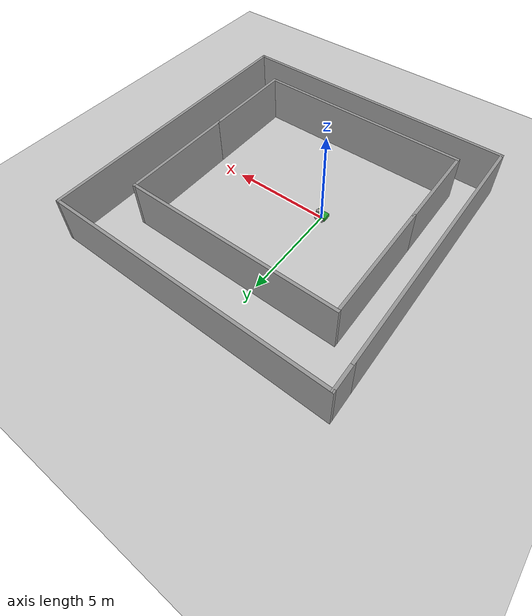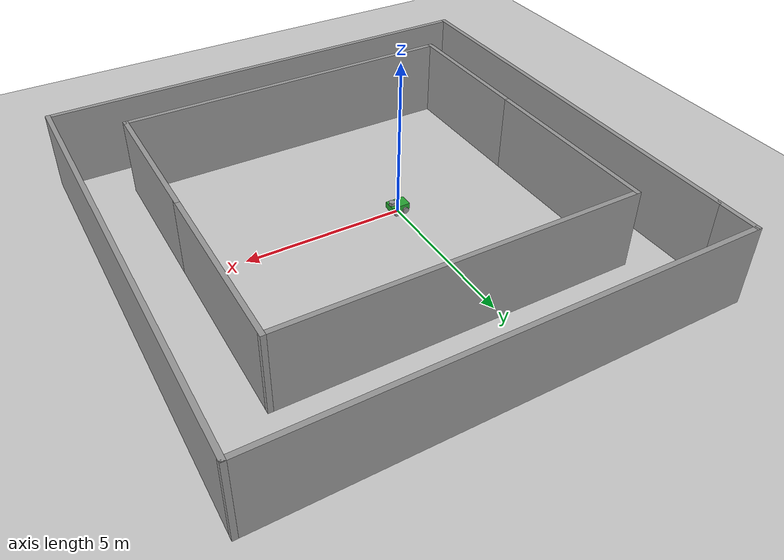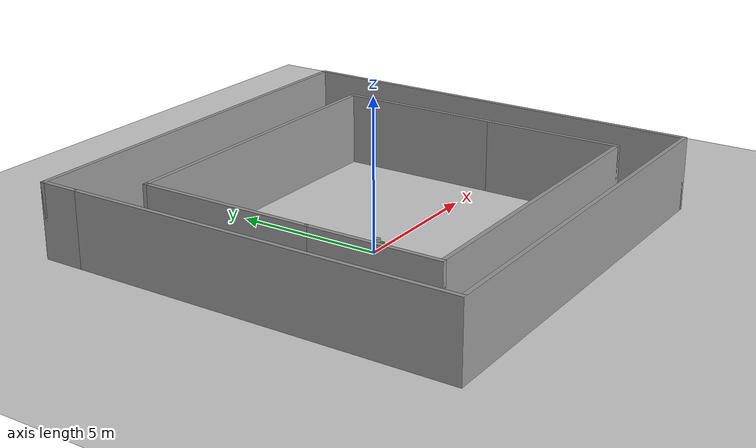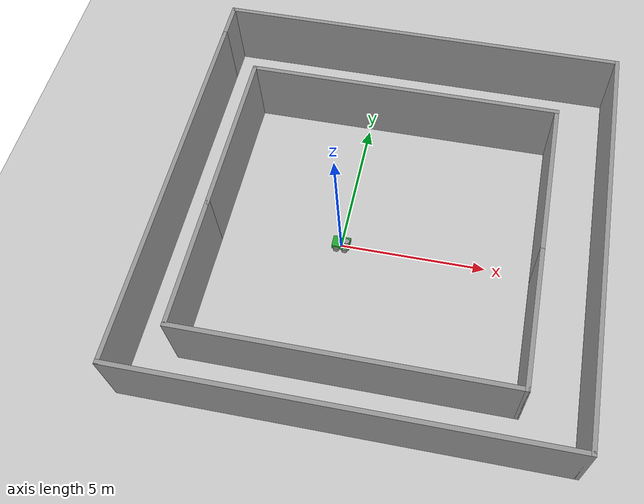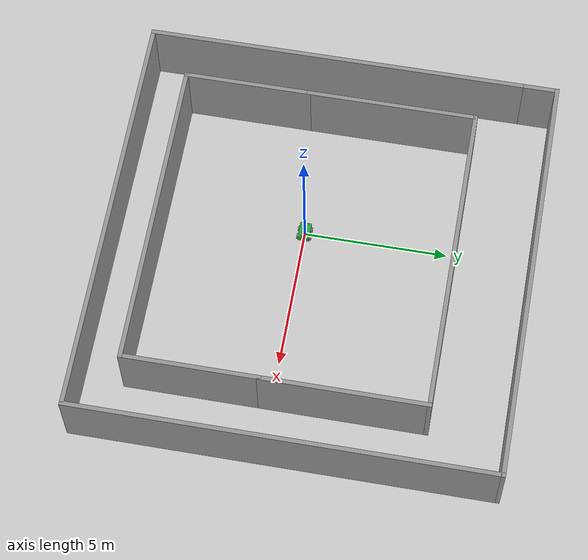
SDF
<sdf version="1.7">
 <world name="default">
  <light name="sun" type="directional">
   <pose>0 0 10 0 -0 0</pose>
   <diffuse>0.8 0.8 0.8 1</diffuse>
   <specular>0.2 0.2 0.2 1</specular>
   <attenuation>
    <range>1000</range>
    <constant>0.9</constant>
    <linear>0.01</linear>
    <quadratic>0.001</quadratic>
   </attenuation>
   <direction>-0.5 0.1 -0.9</direction>
   <spot><inner_angle>0</inner_angle><outer_angle>0</outer_angle><falloff>0</falloff></spot>
  </light>
  <model name="ground_plane">
   <static>1</static>
   <link name="link">
    <collision name="collision">
     <geometry><plane><normal>0 0 1</normal><size>100 100</size></plane></geometry>
     <surface>
      <contact><collide_bitmask>65535</collide_bitmask></contact>
      <friction><ode><mu>100</mu><mu2>50</mu2></ode></friction>
     </surface>
    </collision>
    <visual name="visual">
     <cast_shadows>0</cast_shadows>
     <geometry><plane><normal>0 0 1</normal><size>100 100</size></plane></geometry>
     <material>
      <script><uri>file://media/materials/scripts/gazebo.material</uri><name>Gazebo/Grey</name></script>
     </material>
    </visual>
   </link>
  </model>
  <gravity>0 0 -9.8</gravity>
  <magnetic_field>6e-06 2.3e-05 -4.2e-05</magnetic_field>
  <atmosphere type="adiabatic"/>
  <physics type="ode">
   <max_step_size>0.001</max_step_size>
   <real_time_factor>1</real_time_factor>
   <real_time_update_rate>1000</real_time_update_rate>
  </physics>
  <scene><ambient>0.4 0.4 0.4 1</ambient><background>0.7 0.7 0.7 1</background><shadows>1</shadows></scene>
  <audio><device>default</device></audio>
  <spherical_coordinates>
   <surface_model>EARTH_WGS84</surface_model>
   <latitude_deg>0</latitude_deg>
   <longitude_deg>0</longitude_deg>
   <elevation>0</elevation>
   <heading_deg>0</heading_deg>
  </spherical_coordinates>
  <model name="my_robot">
   <link name="base_footprint">
    <inertial>
     <pose>0.018182 0 0.213636 0 -0 0</pose>
     <mass>2.2</mass>
     <inertia>
      <ixx>0.272924</ixx>
      <ixy>0</ixy>
      <ixz>-0.00545455</ixz>
      <iyy>0.36203</iyy>
      <iyz>-1.45993e-06</iyz>
      <izz>0.142773</izz>
     </inertia>
    </inertial>
    <collision name="base_footprint_fixed_joint_lump__base_link_collision">
     <pose>0 0 0.2 0 -0 0</pose>
     <geometry><box><size>0.6 0.4 0.2</size></box></geometry>
    </collision>
    <collision name="base_footprint_fixed_joint_lump__laser_frame_collision_1">
     <pose>0.2 0 0.35 1.57 -0 0</pose>
     <geometry><cylinder><length>0.1</length><radius>0.1</radius></cylinder></geometry>
    </collision>
    <visual name="base_footprint_fixed_joint_lump__base_link_visual">
     <pose>0 0 0.2 0 -0 0</pose>
     <geometry><box><size>0.6 0.4 0.2</size></box></geometry>
     <material>
      <script><name>Gazebo/Green</name><uri>file://media/materials/scripts/gazebo.material</uri></script>
     </material>
    </visual>
    <visual name="base_footprint_fixed_joint_lump__laser_frame_visual_1">
     <pose>0.2 0 0.35 0 -0 0</pose>
     <geometry><cylinder><length>0.1</length><radius>0.1</radius></cylinder></geometry>
     <material>
      <script><name>Gazebo/Grey</name><uri>file://media/materials/scripts/gazebo.material</uri></script>
     </material>
    </visual>
    <sensor name="laser" type="ray">
     <visualize>1</visualize>
     <update_rate>10</update_rate>
     <ray>
      <scan>
       <horizontal>
        <samples>360</samples>
        <min_angle>-3.14</min_angle>
        <max_angle>3.14</max_angle>
        <resolution>1</resolution>
       </horizontal>
       <vertical><samples>1</samples><min_angle>0</min_angle><max_angle>0</max_angle></vertical>
      </scan>
      <range><min>0.3</min><max>12</max></range>
     </ray>
     <plugin name="laser_controller" filename="libgazebo_ros_ray_sensor.so">
      <ros><argument>~/out:=scan</argument></ros>
      <output_type>sensor_msgs/LaserScan</output_type>
      <frame_name>laser_frame</frame_name>
     </plugin>
     <pose>0.2 0 0.35 0 -0 0</pose>
    </sensor>
   </link>
   <joint name="base_left_back_wheel" type="revolute">
    <pose relative_to="base_footprint">-0.15 0.225 0.1 0 -0 0</pose>
    <parent>base_footprint</parent>
    <child>left_back wheel</child>
    <axis>
     <xyz>0 1 0</xyz>
     <limit><lower>-1e+16</lower><upper>1e+16</upper></limit>
     <dynamics><spring_reference>0</spring_reference><spring_stiffness>0</spring_stiffness></dynamics>
    </axis>
   </joint>
   <link name="left_back wheel">
    <pose relative_to="base_left_back_wheel">0 0 0 0 -0 0</pose>
    <inertial>
     <pose>0 0 0 1.57 -0 0</pose>
     <mass>0.2</mass>
     <inertia>
      <ixx>0.00216667</ixx>
      <ixy>0</ixy>
      <ixz>0</ixz>
      <iyy>0.00216667</iyy>
      <iyz>0</iyz>
      <izz>0.004</izz>
     </inertia>
    </inertial>
    <collision name="left_back wheel_collision">
     <pose>0 0 0 1.57 -0 0</pose>
     <geometry><cylinder><length>0.05</length><radius>0.1</radius></cylinder></geometry>
    </collision>
    <visual name="left_back wheel_visual">
     <pose>0 0 0 1.57 -0 0</pose>
     <geometry><cylinder><length>0.05</length><radius>0.1</radius></cylinder></geometry>
     <material>
      <script><name>Gazebo/Grey</name><uri>file://media/materials/scripts/gazebo.material</uri></script>
     </material>
    </visual>
   </link>
   <joint name="base_left_front_wheel" type="revolute">
    <pose relative_to="base_footprint">0.15 0.225 0.1 0 -0 0</pose>
    <parent>base_footprint</parent>
    <child>left_front wheel</child>
    <axis>
     <xyz>0 1 0</xyz>
     <limit><lower>-1e+16</lower><upper>1e+16</upper></limit>
     <dynamics><spring_reference>0</spring_reference><spring_stiffness>0</spring_stiffness></dynamics>
    </axis>
   </joint>
   <link name="left_front wheel">
    <pose relative_to="base_left_front_wheel">0 0 0 0 -0 0</pose>
    <inertial>
     <pose>0 0 0 1.57 -0 0</pose>
     <mass>0.2</mass>
     <inertia>
      <ixx>0.00216667</ixx>
      <ixy>0</ixy>
      <ixz>0</ixz>
      <iyy>0.00216667</iyy>
      <iyz>0</iyz>
      <izz>0.004</izz>
     </inertia>
    </inertial>
    <collision name="left_front wheel_collision">
     <pose>0 0 0 1.57 -0 0</pose>
     <geometry><cylinder><length>0.05</length><radius>0.1</radius></cylinder></geometry>
    </collision>
    <visual name="left_front wheel_visual">
     <pose>0 0 0 1.57 -0 0</pose>
     <geometry><cylinder><length>0.05</length><radius>0.1</radius></cylinder></geometry>
     <material>
      <script><name>Gazebo/Grey</name><uri>file://media/materials/scripts/gazebo.material</uri></script>
     </material>
    </visual>
   </link>
   <joint name="base_right_back_wheel" type="revolute">
    <pose relative_to="base_footprint">-0.15 -0.225 0.1 0 -0 0</pose>
    <parent>base_footprint</parent>
    <child>right_back wheel</child>
    <axis>
     <xyz>0 1 0</xyz>
     <limit><lower>-1e+16</lower><upper>1e+16</upper></limit>
     <dynamics><spring_reference>0</spring_reference><spring_stiffness>0</spring_stiffness></dynamics>
    </axis>
   </joint>
   <link name="right_back wheel">
    <pose relative_to="base_right_back_wheel">0 0 0 0 -0 0</pose>
    <inertial>
     <pose>0 0 0 1.57 -0 0</pose>
     <mass>0.2</mass>
     <inertia>
      <ixx>0.00216667</ixx>
      <ixy>0</ixy>
      <ixz>0</ixz>
      <iyy>0.00216667</iyy>
      <iyz>0</iyz>
      <izz>0.004</izz>
     </inertia>
    </inertial>
    <collision name="right_back wheel_collision">
     <pose>0 0 0 1.57 -0 0</pose>
     <geometry><cylinder><length>0.05</length><radius>0.1</radius></cylinder></geometry>
    </collision>
    <visual name="right_back wheel_visual">
     <pose>0 0 0 1.57 -0 0</pose>
     <geometry><cylinder><length>0.05</length><radius>0.1</radius></cylinder></geometry>
     <material>
      <script><name>Gazebo/Grey</name><uri>file://media/materials/scripts/gazebo.material</uri></script>
     </material>
    </visual>
   </link>
   <joint name="base_right_front_wheel" type="revolute">
    <pose relative_to="base_footprint">0.15 -0.225 0.1 0 -0 0</pose>
    <parent>base_footprint</parent>
    <child>right_front wheel</child>
    <axis>
     <xyz>0 1 0</xyz>
     <limit><lower>-1e+16</lower><upper>1e+16</upper></limit>
     <dynamics><spring_reference>0</spring_reference><spring_stiffness>0</spring_stiffness></dynamics>
    </axis>
   </joint>
   <link name="right_front wheel">
    <pose relative_to="base_right_front_wheel">0 0 0 0 -0 0</pose>
    <inertial>
     <pose>0 0 0 1.57 -0 0</pose>
     <mass>0.2</mass>
     <inertia>
      <ixx>0.00216667</ixx>
      <ixy>0</ixy>
      <ixz>0</ixz>
      <iyy>0.00216667</iyy>
      <iyz>0</iyz>
      <izz>0.004</izz>
     </inertia>
    </inertial>
    <collision name="right_front wheel_collision">
     <pose>0 0 0 1.57 -0 0</pose>
     <geometry><cylinder><length>0.05</length><radius>0.1</radius></cylinder></geometry>
    </collision>
    <visual name="right_front wheel_visual">
     <pose>0 0 0 1.57 -0 0</pose>
     <geometry><cylinder><length>0.05</length><radius>0.1</radius></cylinder></geometry>
     <material>
      <script><name>Gazebo/Grey</name><uri>file://media/materials/scripts/gazebo.material</uri></script>
     </material>
    </visual>
   </link>
   <static>0</static>
   <plugin name="gazebo_ros_diff_drive" filename="libgazebo_ros_diff_drive.so">
    <update_rate>50</update_rate>
    <num_wheel_pairs>2</num_wheel_pairs>
    <left_joint>base_left_back_wheel</left_joint>
    <right_joint>base_right_back_wheel</right_joint>
    <left_joint>base_left_front_wheel</left_joint>
    <right_joint>base_right_front_wheel</right_joint>
    <wheel_separation>0.45</wheel_separation>
    <wheel_diameter>0.2</wheel_diameter>
    <command_topic>cmd_vel</command_topic>
    <publish_odom>1</publish_odom>
    <publish_odom_tf>1</publish_odom_tf>
    <publish_wheel_tf>1</publish_wheel_tf>
    <odometry_topic>odom</odometry_topic>
    <odometry_frame>odom</odometry_frame>
    <robot_base_frame>base_footprint</robot_base_frame>
   </plugin>
   <pose>0.000107 -0.001554 1.1e-05 0 0 -0.000786</pose>
  </model>
  <model name="test">
   <pose>1.405 0.745 0 0 -0 0</pose>
   <link name="Wall_10">
    <collision name="Wall_10_Collision">
     <geometry><box><size>4.75 0.15 2.5</size></box></geometry>
     <pose>0 0 1.25 0 -0 0</pose>
    </collision>
    <visual name="Wall_10_Visual">
     <pose>0 0 1.25 0 -0 0</pose>
     <geometry><box><size>4.75 0.15 2.5</size></box></geometry>
     <material>
      <script><uri>file://media/materials/scripts/gazebo.material</uri><name>Gazebo/Grey</name></script>
      <ambient>1 1 1 1</ambient>
     </material>
     <meta><layer>0</layer></meta>
    </visual>
    <pose>5.215 -3.375 0 0 -0 1.5708</pose>
   </link>
   <link name="Wall_11">
    <collision name="Wall_11_Collision">
     <geometry><box><size>5.75 0.15 2.5</size></box></geometry>
     <pose>0 0 1.25 0 -0 0</pose>
    </collision>
    <visual name="Wall_11_Visual">
     <pose>0 0 1.25 0 -0 0</pose>
     <geometry><box><size>5.75 0.15 2.5</size></box></geometry>
     <material>
      <script><uri>file://media/materials/scripts/gazebo.material</uri><name>Gazebo/Grey</name></script>
      <ambient>1 1 1 1</ambient>
     </material>
     <meta><layer>0</layer></meta>
    </visual>
    <pose>5.215 1.725 0 0 -0 1.5708</pose>
   </link>
   <link name="Wall_12">
    <collision name="Wall_12_Collision">
     <geometry><box><size>11 0.15 2.5</size></box></geometry>
     <pose>0 0 1.25 0 -0 0</pose>
    </collision>
    <visual name="Wall_12_Visual">
     <pose>0 0 1.25 0 -0 0</pose>
     <geometry><box><size>11 0.15 2.5</size></box></geometry>
     <material>
      <script><uri>file://media/materials/scripts/gazebo.material</uri><name>Gazebo/Grey</name></script>
      <ambient>1 1 1 1</ambient>
     </material>
     <meta><layer>0</layer></meta>
    </visual>
    <pose>-0.21 4.525 0 0 -0 3.14159</pose>
   </link>
   <link name="Wall_13">
    <collision name="Wall_13_Collision">
     <geometry><box><size>6 0.15 2.5</size></box></geometry>
     <pose>0 0 1.25 0 -0 0</pose>
    </collision>
    <visual name="Wall_13_Visual">
     <pose>0 0 1.25 0 -0 0</pose>
     <geometry><box><size>6 0.15 2.5</size></box></geometry>
     <material>
      <script><uri>file://media/materials/scripts/gazebo.material</uri><name>Gazebo/Grey</name></script>
      <ambient>1 1 1 1</ambient>
     </material>
     <meta><layer>0</layer></meta>
    </visual>
    <pose>-5.635 1.6 0 0 -0 -1.5708</pose>
   </link>
   <link name="Wall_15">
    <collision name="Wall_15_Collision">
     <geometry><box><size>13.25 0.15 2.5</size></box></geometry>
     <pose>0 0 1.25 0 -0 0</pose>
    </collision>
    <visual name="Wall_15_Visual">
     <pose>0 0 1.25 0 -0 0</pose>
     <geometry><box><size>13.25 0.15 2.5</size></box></geometry>
     <material>
      <script><uri>file://media/materials/scripts/gazebo.material</uri><name>Gazebo/Grey</name></script>
      <ambient>1 1 1 1</ambient>
     </material>
     <meta><layer>0</layer></meta>
    </visual>
    <pose>-7.175 -0.625 0 0 -0 -1.5708</pose>
   </link>
   <link name="Wall_16">
    <collision name="Wall_16_Collision">
     <geometry><box><size>14.5 0.15 2.5</size></box></geometry>
     <pose>0 0 1.25 0 -0 0</pose>
    </collision>
    <visual name="Wall_16_Visual">
     <pose>0 0 1.25 0 -0 0</pose>
     <geometry><box><size>14.5 0.15 2.5</size></box></geometry>
     <material>
      <script><uri>file://media/materials/scripts/gazebo.material</uri><name>Gazebo/Grey</name></script>
      <ambient>1 1 1 1</ambient>
     </material>
     <meta><layer>0</layer></meta>
    </visual>
    <pose>0 -7.175 0 0 -0 0</pose>
   </link>
   <link name="Wall_17">
    <collision name="Wall_17_Collision">
     <geometry><box><size>14.5 0.15 2.5</size></box></geometry>
     <pose>0 0 1.25 0 -0 0</pose>
    </collision>
    <visual name="Wall_17_Visual">
     <pose>0 0 1.25 0 -0 0</pose>
     <geometry><box><size>14.5 0.15 2.5</size></box></geometry>
     <material>
      <script><uri>file://media/materials/scripts/gazebo.material</uri><name>Gazebo/Grey</name></script>
      <ambient>1 1 1 1</ambient>
     </material>
     <meta><layer>0</layer></meta>
    </visual>
    <pose>7.175 0 0 0 -0 1.5708</pose>
   </link>
   <link name="Wall_18">
    <collision name="Wall_18_Collision">
     <geometry><box><size>14.5 0.15 2.5</size></box></geometry>
     <pose>0 0 1.25 0 -0 0</pose>
    </collision>
    <visual name="Wall_18_Visual">
     <pose>0 0 1.25 0 -0 0</pose>
     <geometry><box><size>14.5 0.15 2.5</size></box></geometry>
     <material>
      <script><uri>file://media/materials/scripts/gazebo.material</uri><name>Gazebo/Grey</name></script>
      <ambient>1 1 1 1</ambient>
     </material>
     <meta><layer>0</layer></meta>
    </visual>
    <pose>0 7.175 0 0 -0 3.14159</pose>
   </link>
   <link name="Wall_19">
    <collision name="Wall_19_Collision">
     <geometry><box><size>1.4 0.15 2.5</size></box></geometry>
     <pose>0 0 1.25 0 -0 0</pose>
    </collision>
    <visual name="Wall_19_Visual">
     <pose>0 0 1.25 0 -0 0</pose>
     <geometry><box><size>1.4 0.15 2.5</size></box></geometry>
     <material>
      <script><uri>file://media/materials/scripts/gazebo.material</uri><name>Gazebo/Grey</name></script>
      <ambient>1 1 1 1</ambient>
     </material>
     <meta><layer>0</layer></meta>
    </visual>
    <pose>-7.175 6.55 0 0 -0 -1.5708</pose>
   </link>
   <link name="Wall_8">
    <collision name="Wall_8_Collision">
     <geometry><box><size>4.5 0.15 2.5</size></box></geometry>
     <pose>0 0 1.25 0 -0 0</pose>
    </collision>
    <visual name="Wall_8_Visual">
     <pose>0 0 1.25 0 -0 0</pose>
     <geometry><box><size>4.5 0.15 2.5</size></box></geometry>
     <material>
      <script><uri>file://media/materials/scripts/gazebo.material</uri><name>Gazebo/Grey</name></script>
      <ambient>1 1 1 1</ambient>
     </material>
     <meta><layer>0</layer></meta>
    </visual>
    <pose>-5.635 -3.5 0 0 -0 -1.5708</pose>
   </link>
   <link name="Wall_9">
    <collision name="Wall_9_Collision">
     <geometry><box><size>11 0.15 2.5</size></box></geometry>
     <pose>0 0 1.25 0 -0 0</pose>
    </collision>
    <visual name="Wall_9_Visual">
     <pose>0 0 1.25 0 -0 0</pose>
     <geometry><box><size>11 0.15 2.5</size></box></geometry>
     <material>
      <script><uri>file://media/materials/scripts/gazebo.material</uri><name>Gazebo/Grey</name></script>
      <ambient>1 1 1 1</ambient>
     </material>
     <meta><layer>0</layer></meta>
    </visual>
    <pose>-0.21 -5.675 0 0 -0 0</pose>
   </link>
   <static>1</static>
  </model>
 </world>
</sdf>
